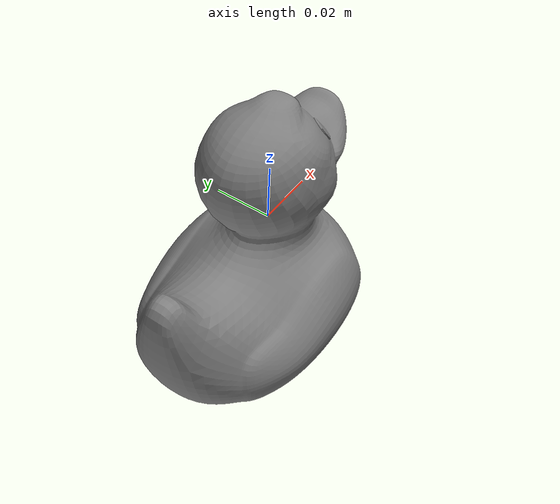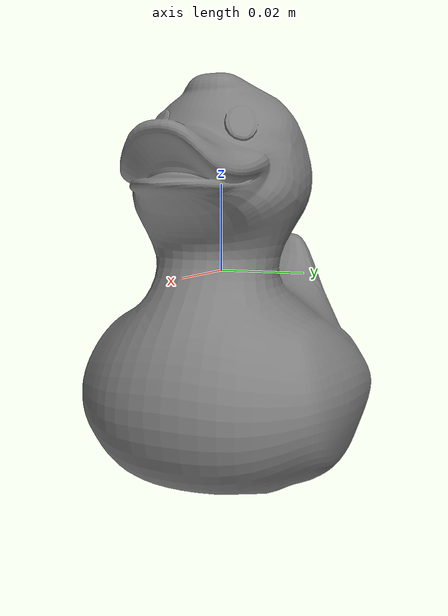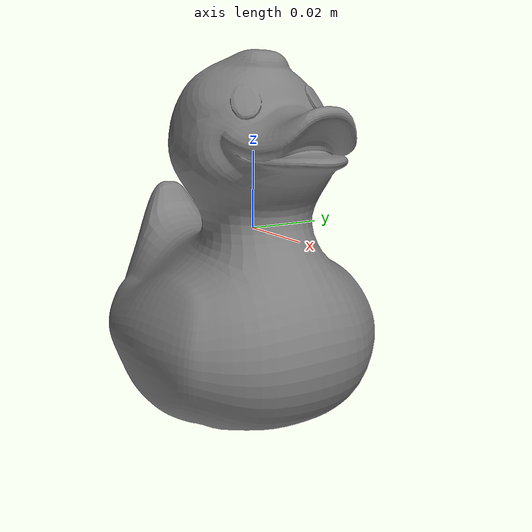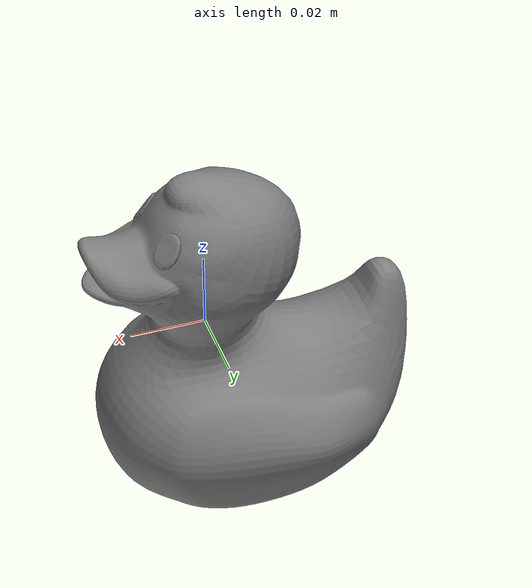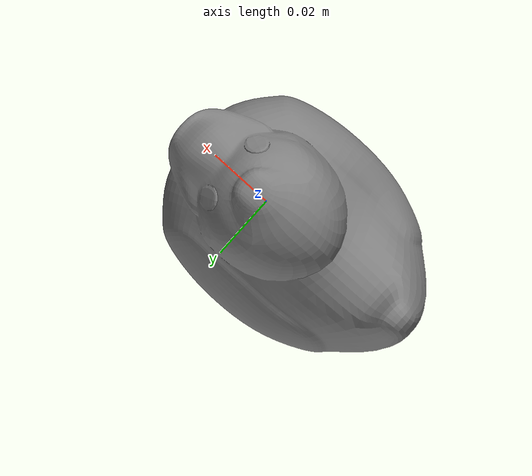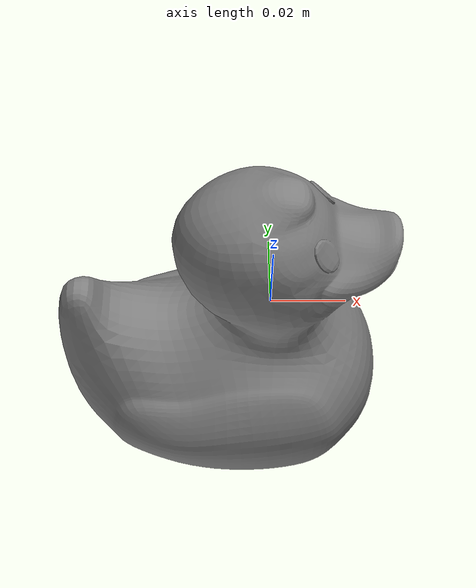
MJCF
<mujoco model="rubber_duck">
  <default>
    <default class="visual">
      <geom group="2" type="mesh" contype="0" conaffinity="0"/>
    </default>
    <default class="collision">
      <geom group="3" type="mesh"/>
    </default>
  </default>
  <asset>
    <mesh file="rubber_duck.obj"/>
    <mesh file="rubber_duck_collision_0.obj"/>
    <mesh file="rubber_duck_collision_1.obj"/>
    <mesh file="rubber_duck_collision_2.obj"/>
    <mesh file="rubber_duck_collision_3.obj"/>
    <mesh file="rubber_duck_collision_4.obj"/>
    <mesh file="rubber_duck_collision_5.obj"/>
    <mesh file="rubber_duck_collision_6.obj"/>
    <mesh file="rubber_duck_collision_7.obj"/>
  </asset>
  <worldbody>
    <body name="rubber_duck">
      <geom mesh="rubber_duck" class="visual"/>
      <geom mesh="rubber_duck_collision_0" rgba="0.9909314043975451 0.27625373322012614 0.1738987770894782 1" class="collision"/>
      <geom mesh="rubber_duck_collision_1" rgba="0.967053170824638 0.11680587319571234 0.11087793515699562 1" class="collision"/>
      <geom mesh="rubber_duck_collision_2" rgba="0.21857155683837937 0.6007722366486206 0.4358911977292488 1" class="collision"/>
      <geom mesh="rubber_duck_collision_3" rgba="0.02222645102768006 0.9001758651591799 0.7904868222198979 1" class="collision"/>
      <geom mesh="rubber_duck_collision_4" rgba="0.6779295287364845 0.9448722533928271 0.3856126504671491 1" class="collision"/>
      <geom mesh="rubber_duck_collision_5" rgba="0.25726196822082226 0.9865016020974317 0.8958947296165829 1" class="collision"/>
      <geom mesh="rubber_duck_collision_6" rgba="0.5724334072035917 0.79524676933259 0.9569494353873428 1" class="collision"/>
      <geom mesh="rubber_duck_collision_7" rgba="0.20459424864816478 0.5793317490155067 0.45514807817811087 1" class="collision"/>
    </body>
  </worldbody>
</mujoco>
